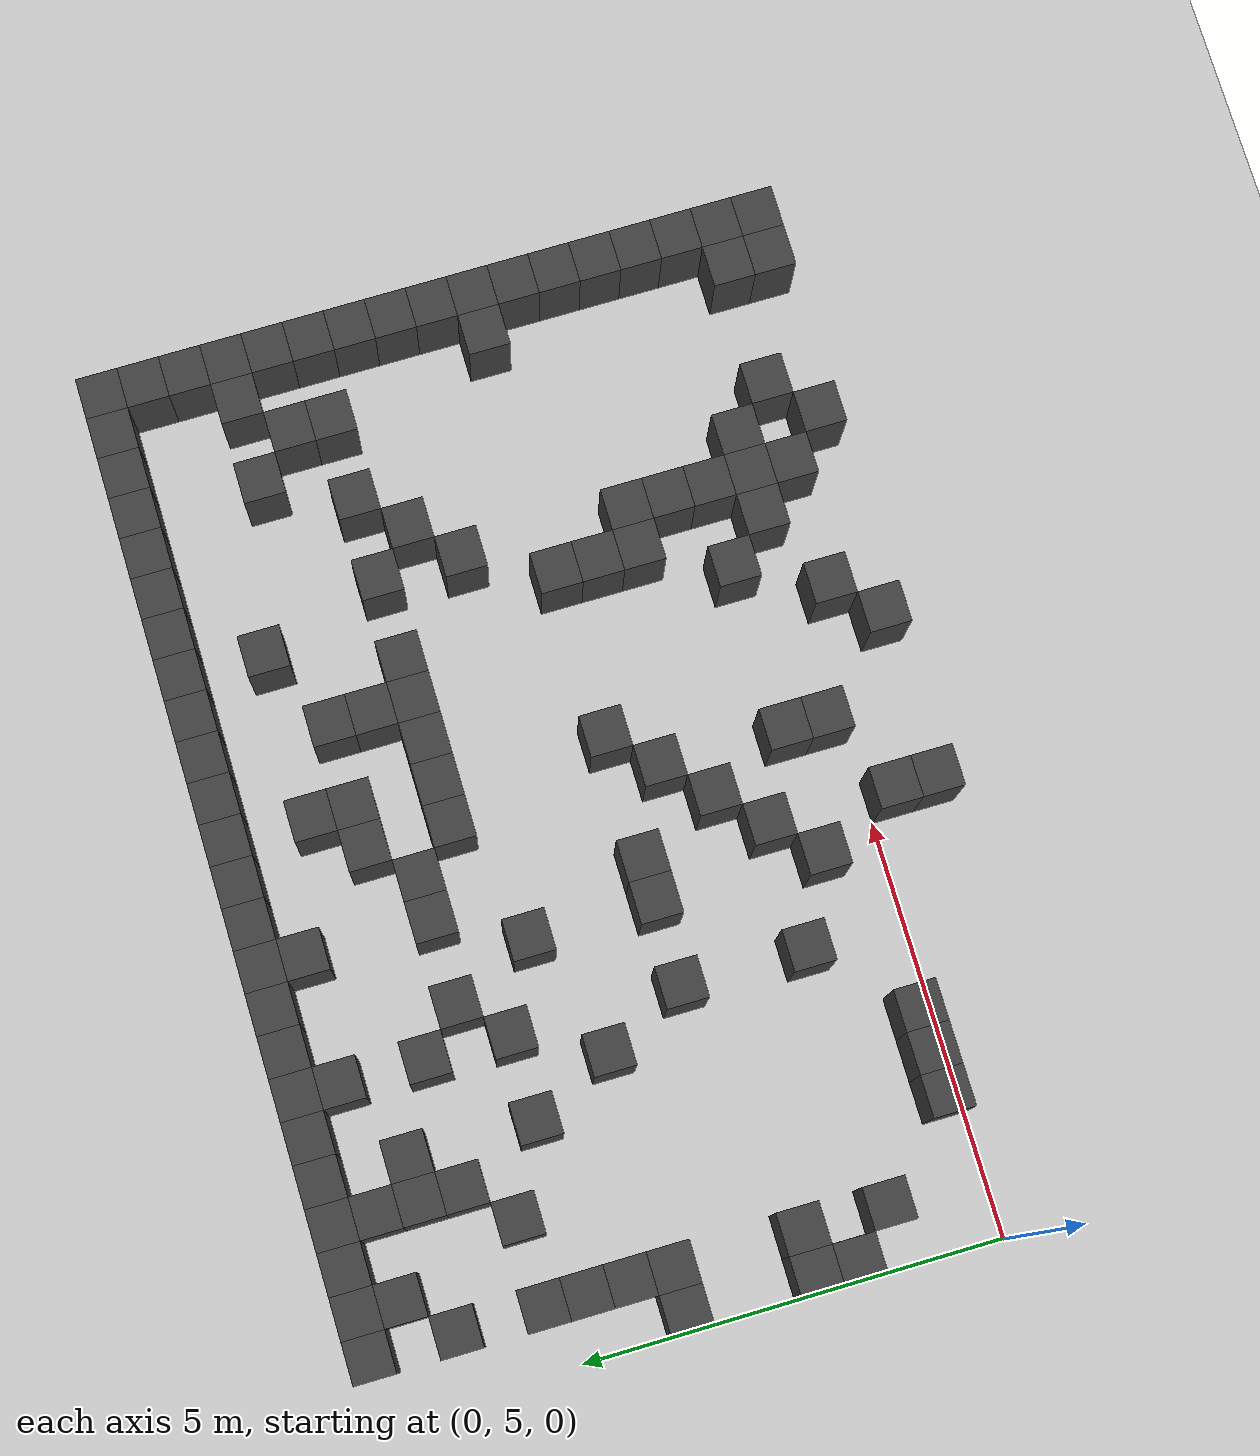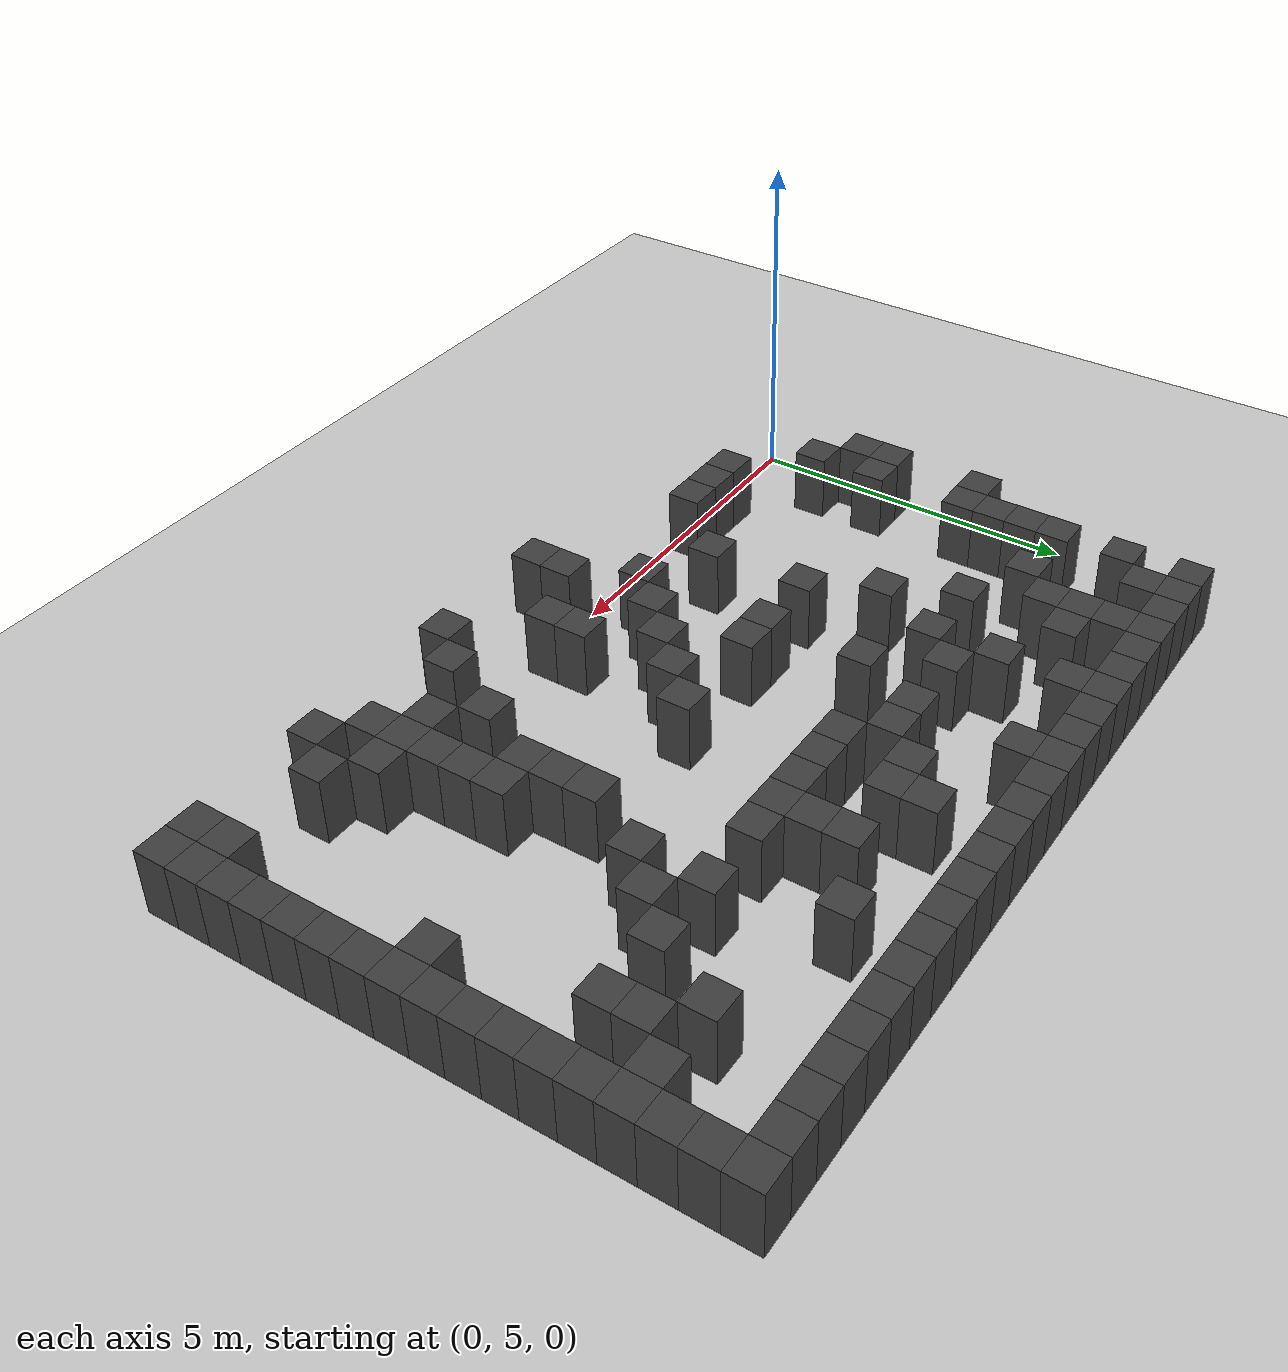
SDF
<sdf version="1.7">
 <world name="map_4682">
  <model name="ground_plane">
   <static>true</static>
   <link name="link">
    <collision name="collision">
     <geometry><plane><normal>0 0 1</normal><size>200 200</size></plane></geometry>
    </collision>
    <visual name="visual">
     <geometry><plane><normal>0 0 1</normal><size>200 200</size></plane></geometry>
     <material><ambient>0.8 0.8 0.8 1</ambient><diffuse>0.8 0.8 0.8 1</diffuse></material>
    </visual>
   </link>
  </model>
  <model name="maze_environment">
   <static>true</static>
   <link name="wall_26">
    <pose>0.750 12.250 0.500 0 0 0</pose>
    <collision name="col"><geometry><box><size>0.5 0.5 1.0</size></box></geometry></collision>
    <visual name="vis">
     <geometry><box><size>0.5 0.5 1.0</size></box></geometry>
     <material><ambient>0.15 0.15 0.15 1</ambient><diffuse>0.25 0.25 0.25 1</diffuse></material>
    </visual>
   </link>
   <link name="wall_27">
    <pose>1.250 12.250 0.500 0 0 0</pose>
    <collision name="col"><geometry><box><size>0.5 0.5 1.0</size></box></geometry></collision>
    <visual name="vis">
     <geometry><box><size>0.5 0.5 1.0</size></box></geometry>
     <material><ambient>0.15 0.15 0.15 1</ambient><diffuse>0.25 0.25 0.25 1</diffuse></material>
    </visual>
   </link>
   <link name="wall_28">
    <pose>1.750 12.250 0.500 0 0 0</pose>
    <collision name="col"><geometry><box><size>0.5 0.5 1.0</size></box></geometry></collision>
    <visual name="vis">
     <geometry><box><size>0.5 0.5 1.0</size></box></geometry>
     <material><ambient>0.15 0.15 0.15 1</ambient><diffuse>0.25 0.25 0.25 1</diffuse></material>
    </visual>
   </link>
   <link name="wall_29">
    <pose>2.250 12.250 0.500 0 0 0</pose>
    <collision name="col"><geometry><box><size>0.5 0.5 1.0</size></box></geometry></collision>
    <visual name="vis">
     <geometry><box><size>0.5 0.5 1.0</size></box></geometry>
     <material><ambient>0.15 0.15 0.15 1</ambient><diffuse>0.25 0.25 0.25 1</diffuse></material>
    </visual>
   </link>
   <link name="wall_30">
    <pose>2.750 12.250 0.500 0 0 0</pose>
    <collision name="col"><geometry><box><size>0.5 0.5 1.0</size></box></geometry></collision>
    <visual name="vis">
     <geometry><box><size>0.5 0.5 1.0</size></box></geometry>
     <material><ambient>0.15 0.15 0.15 1</ambient><diffuse>0.25 0.25 0.25 1</diffuse></material>
    </visual>
   </link>
   <link name="wall_31">
    <pose>3.250 12.250 0.500 0 0 0</pose>
    <collision name="col"><geometry><box><size>0.5 0.5 1.0</size></box></geometry></collision>
    <visual name="vis">
     <geometry><box><size>0.5 0.5 1.0</size></box></geometry>
     <material><ambient>0.15 0.15 0.15 1</ambient><diffuse>0.25 0.25 0.25 1</diffuse></material>
    </visual>
   </link>
   <link name="wall_32">
    <pose>3.750 12.250 0.500 0 0 0</pose>
    <collision name="col"><geometry><box><size>0.5 0.5 1.0</size></box></geometry></collision>
    <visual name="vis">
     <geometry><box><size>0.5 0.5 1.0</size></box></geometry>
     <material><ambient>0.15 0.15 0.15 1</ambient><diffuse>0.25 0.25 0.25 1</diffuse></material>
    </visual>
   </link>
   <link name="wall_33">
    <pose>4.250 12.250 0.500 0 0 0</pose>
    <collision name="col"><geometry><box><size>0.5 0.5 1.0</size></box></geometry></collision>
    <visual name="vis">
     <geometry><box><size>0.5 0.5 1.0</size></box></geometry>
     <material><ambient>0.15 0.15 0.15 1</ambient><diffuse>0.25 0.25 0.25 1</diffuse></material>
    </visual>
   </link>
   <link name="wall_34">
    <pose>4.750 12.250 0.500 0 0 0</pose>
    <collision name="col"><geometry><box><size>0.5 0.5 1.0</size></box></geometry></collision>
    <visual name="vis">
     <geometry><box><size>0.5 0.5 1.0</size></box></geometry>
     <material><ambient>0.15 0.15 0.15 1</ambient><diffuse>0.25 0.25 0.25 1</diffuse></material>
    </visual>
   </link>
   <link name="wall_35">
    <pose>5.250 12.250 0.500 0 0 0</pose>
    <collision name="col"><geometry><box><size>0.5 0.5 1.0</size></box></geometry></collision>
    <visual name="vis">
     <geometry><box><size>0.5 0.5 1.0</size></box></geometry>
     <material><ambient>0.15 0.15 0.15 1</ambient><diffuse>0.25 0.25 0.25 1</diffuse></material>
    </visual>
   </link>
   <link name="wall_36">
    <pose>5.750 12.250 0.500 0 0 0</pose>
    <collision name="col"><geometry><box><size>0.5 0.5 1.0</size></box></geometry></collision>
    <visual name="vis">
     <geometry><box><size>0.5 0.5 1.0</size></box></geometry>
     <material><ambient>0.15 0.15 0.15 1</ambient><diffuse>0.25 0.25 0.25 1</diffuse></material>
    </visual>
   </link>
   <link name="wall_37">
    <pose>6.250 12.250 0.500 0 0 0</pose>
    <collision name="col"><geometry><box><size>0.5 0.5 1.0</size></box></geometry></collision>
    <visual name="vis">
     <geometry><box><size>0.5 0.5 1.0</size></box></geometry>
     <material><ambient>0.15 0.15 0.15 1</ambient><diffuse>0.25 0.25 0.25 1</diffuse></material>
    </visual>
   </link>
   <link name="wall_38">
    <pose>6.750 12.250 0.500 0 0 0</pose>
    <collision name="col"><geometry><box><size>0.5 0.5 1.0</size></box></geometry></collision>
    <visual name="vis">
     <geometry><box><size>0.5 0.5 1.0</size></box></geometry>
     <material><ambient>0.15 0.15 0.15 1</ambient><diffuse>0.25 0.25 0.25 1</diffuse></material>
    </visual>
   </link>
   <link name="wall_39">
    <pose>7.250 12.250 0.500 0 0 0</pose>
    <collision name="col"><geometry><box><size>0.5 0.5 1.0</size></box></geometry></collision>
    <visual name="vis">
     <geometry><box><size>0.5 0.5 1.0</size></box></geometry>
     <material><ambient>0.15 0.15 0.15 1</ambient><diffuse>0.25 0.25 0.25 1</diffuse></material>
    </visual>
   </link>
   <link name="wall_40">
    <pose>7.750 12.250 0.500 0 0 0</pose>
    <collision name="col"><geometry><box><size>0.5 0.5 1.0</size></box></geometry></collision>
    <visual name="vis">
     <geometry><box><size>0.5 0.5 1.0</size></box></geometry>
     <material><ambient>0.15 0.15 0.15 1</ambient><diffuse>0.25 0.25 0.25 1</diffuse></material>
    </visual>
   </link>
   <link name="wall_41">
    <pose>8.250 12.250 0.500 0 0 0</pose>
    <collision name="col"><geometry><box><size>0.5 0.5 1.0</size></box></geometry></collision>
    <visual name="vis">
     <geometry><box><size>0.5 0.5 1.0</size></box></geometry>
     <material><ambient>0.15 0.15 0.15 1</ambient><diffuse>0.25 0.25 0.25 1</diffuse></material>
    </visual>
   </link>
   <link name="wall_42">
    <pose>8.750 12.250 0.500 0 0 0</pose>
    <collision name="col"><geometry><box><size>0.5 0.5 1.0</size></box></geometry></collision>
    <visual name="vis">
     <geometry><box><size>0.5 0.5 1.0</size></box></geometry>
     <material><ambient>0.15 0.15 0.15 1</ambient><diffuse>0.25 0.25 0.25 1</diffuse></material>
    </visual>
   </link>
   <link name="wall_43">
    <pose>9.250 12.250 0.500 0 0 0</pose>
    <collision name="col"><geometry><box><size>0.5 0.5 1.0</size></box></geometry></collision>
    <visual name="vis">
     <geometry><box><size>0.5 0.5 1.0</size></box></geometry>
     <material><ambient>0.15 0.15 0.15 1</ambient><diffuse>0.25 0.25 0.25 1</diffuse></material>
    </visual>
   </link>
   <link name="wall_44">
    <pose>9.750 12.250 0.500 0 0 0</pose>
    <collision name="col"><geometry><box><size>0.5 0.5 1.0</size></box></geometry></collision>
    <visual name="vis">
     <geometry><box><size>0.5 0.5 1.0</size></box></geometry>
     <material><ambient>0.15 0.15 0.15 1</ambient><diffuse>0.25 0.25 0.25 1</diffuse></material>
    </visual>
   </link>
   <link name="wall_45">
    <pose>10.250 12.250 0.500 0 0 0</pose>
    <collision name="col"><geometry><box><size>0.5 0.5 1.0</size></box></geometry></collision>
    <visual name="vis">
     <geometry><box><size>0.5 0.5 1.0</size></box></geometry>
     <material><ambient>0.15 0.15 0.15 1</ambient><diffuse>0.25 0.25 0.25 1</diffuse></material>
    </visual>
   </link>
   <link name="wall_46">
    <pose>10.750 12.250 0.500 0 0 0</pose>
    <collision name="col"><geometry><box><size>0.5 0.5 1.0</size></box></geometry></collision>
    <visual name="vis">
     <geometry><box><size>0.5 0.5 1.0</size></box></geometry>
     <material><ambient>0.15 0.15 0.15 1</ambient><diffuse>0.25 0.25 0.25 1</diffuse></material>
    </visual>
   </link>
   <link name="wall_47">
    <pose>11.250 12.250 0.500 0 0 0</pose>
    <collision name="col"><geometry><box><size>0.5 0.5 1.0</size></box></geometry></collision>
    <visual name="vis">
     <geometry><box><size>0.5 0.5 1.0</size></box></geometry>
     <material><ambient>0.15 0.15 0.15 1</ambient><diffuse>0.25 0.25 0.25 1</diffuse></material>
    </visual>
   </link>
   <link name="wall_48">
    <pose>11.750 12.250 0.500 0 0 0</pose>
    <collision name="col"><geometry><box><size>0.5 0.5 1.0</size></box></geometry></collision>
    <visual name="vis">
     <geometry><box><size>0.5 0.5 1.0</size></box></geometry>
     <material><ambient>0.15 0.15 0.15 1</ambient><diffuse>0.25 0.25 0.25 1</diffuse></material>
    </visual>
   </link>
   <link name="wall_49">
    <pose>12.250 12.250 0.500 0 0 0</pose>
    <collision name="col"><geometry><box><size>0.5 0.5 1.0</size></box></geometry></collision>
    <visual name="vis">
     <geometry><box><size>0.5 0.5 1.0</size></box></geometry>
     <material><ambient>0.15 0.15 0.15 1</ambient><diffuse>0.25 0.25 0.25 1</diffuse></material>
    </visual>
   </link>
   <link name="wall_57">
    <pose>1.250 11.750 0.500 0 0 0</pose>
    <collision name="col"><geometry><box><size>0.5 0.5 1.0</size></box></geometry></collision>
    <visual name="vis">
     <geometry><box><size>0.5 0.5 1.0</size></box></geometry>
     <material><ambient>0.15 0.15 0.15 1</ambient><diffuse>0.25 0.25 0.25 1</diffuse></material>
    </visual>
   </link>
   <link name="wall_58">
    <pose>2.250 11.750 0.500 0 0 0</pose>
    <collision name="col"><geometry><box><size>0.5 0.5 1.0</size></box></geometry></collision>
    <visual name="vis">
     <geometry><box><size>0.5 0.5 1.0</size></box></geometry>
     <material><ambient>0.15 0.15 0.15 1</ambient><diffuse>0.25 0.25 0.25 1</diffuse></material>
    </visual>
   </link>
   <link name="wall_59">
    <pose>3.750 11.750 0.500 0 0 0</pose>
    <collision name="col"><geometry><box><size>0.5 0.5 1.0</size></box></geometry></collision>
    <visual name="vis">
     <geometry><box><size>0.5 0.5 1.0</size></box></geometry>
     <material><ambient>0.15 0.15 0.15 1</ambient><diffuse>0.25 0.25 0.25 1</diffuse></material>
    </visual>
   </link>
   <link name="wall_60">
    <pose>5.250 11.750 0.500 0 0 0</pose>
    <collision name="col"><geometry><box><size>0.5 0.5 1.0</size></box></geometry></collision>
    <visual name="vis">
     <geometry><box><size>0.5 0.5 1.0</size></box></geometry>
     <material><ambient>0.15 0.15 0.15 1</ambient><diffuse>0.25 0.25 0.25 1</diffuse></material>
    </visual>
   </link>
   <link name="wall_61">
    <pose>12.250 11.750 0.500 0 0 0</pose>
    <collision name="col"><geometry><box><size>0.5 0.5 1.0</size></box></geometry></collision>
    <visual name="vis">
     <geometry><box><size>0.5 0.5 1.0</size></box></geometry>
     <material><ambient>0.15 0.15 0.15 1</ambient><diffuse>0.25 0.25 0.25 1</diffuse></material>
    </visual>
   </link>
   <link name="wall_69">
    <pose>0.750 11.250 0.500 0 0 0</pose>
    <collision name="col"><geometry><box><size>0.5 0.5 1.0</size></box></geometry></collision>
    <visual name="vis">
     <geometry><box><size>0.5 0.5 1.0</size></box></geometry>
     <material><ambient>0.15 0.15 0.15 1</ambient><diffuse>0.25 0.25 0.25 1</diffuse></material>
    </visual>
   </link>
   <link name="wall_70">
    <pose>2.250 11.250 0.500 0 0 0</pose>
    <collision name="col"><geometry><box><size>0.5 0.5 1.0</size></box></geometry></collision>
    <visual name="vis">
     <geometry><box><size>0.5 0.5 1.0</size></box></geometry>
     <material><ambient>0.15 0.15 0.15 1</ambient><diffuse>0.25 0.25 0.25 1</diffuse></material>
    </visual>
   </link>
   <link name="wall_71">
    <pose>2.750 11.250 0.500 0 0 0</pose>
    <collision name="col"><geometry><box><size>0.5 0.5 1.0</size></box></geometry></collision>
    <visual name="vis">
     <geometry><box><size>0.5 0.5 1.0</size></box></geometry>
     <material><ambient>0.15 0.15 0.15 1</ambient><diffuse>0.25 0.25 0.25 1</diffuse></material>
    </visual>
   </link>
   <link name="wall_72">
    <pose>6.750 11.250 0.500 0 0 0</pose>
    <collision name="col"><geometry><box><size>0.5 0.5 1.0</size></box></geometry></collision>
    <visual name="vis">
     <geometry><box><size>0.5 0.5 1.0</size></box></geometry>
     <material><ambient>0.15 0.15 0.15 1</ambient><diffuse>0.25 0.25 0.25 1</diffuse></material>
    </visual>
   </link>
   <link name="wall_73">
    <pose>8.750 11.250 0.500 0 0 0</pose>
    <collision name="col"><geometry><box><size>0.5 0.5 1.0</size></box></geometry></collision>
    <visual name="vis">
     <geometry><box><size>0.5 0.5 1.0</size></box></geometry>
     <material><ambient>0.15 0.15 0.15 1</ambient><diffuse>0.25 0.25 0.25 1</diffuse></material>
    </visual>
   </link>
   <link name="wall_74">
    <pose>12.250 11.250 0.500 0 0 0</pose>
    <collision name="col"><geometry><box><size>0.5 0.5 1.0</size></box></geometry></collision>
    <visual name="vis">
     <geometry><box><size>0.5 0.5 1.0</size></box></geometry>
     <material><ambient>0.15 0.15 0.15 1</ambient><diffuse>0.25 0.25 0.25 1</diffuse></material>
    </visual>
   </link>
   <link name="wall_81">
    <pose>2.250 10.750 0.500 0 0 0</pose>
    <collision name="col"><geometry><box><size>0.5 0.5 1.0</size></box></geometry></collision>
    <visual name="vis">
     <geometry><box><size>0.5 0.5 1.0</size></box></geometry>
     <material><ambient>0.15 0.15 0.15 1</ambient><diffuse>0.25 0.25 0.25 1</diffuse></material>
    </visual>
   </link>
   <link name="wall_82">
    <pose>3.750 10.750 0.500 0 0 0</pose>
    <collision name="col"><geometry><box><size>0.5 0.5 1.0</size></box></geometry></collision>
    <visual name="vis">
     <geometry><box><size>0.5 0.5 1.0</size></box></geometry>
     <material><ambient>0.15 0.15 0.15 1</ambient><diffuse>0.25 0.25 0.25 1</diffuse></material>
    </visual>
   </link>
   <link name="wall_83">
    <pose>6.250 10.750 0.500 0 0 0</pose>
    <collision name="col"><geometry><box><size>0.5 0.5 1.0</size></box></geometry></collision>
    <visual name="vis">
     <geometry><box><size>0.5 0.5 1.0</size></box></geometry>
     <material><ambient>0.15 0.15 0.15 1</ambient><diffuse>0.25 0.25 0.25 1</diffuse></material>
    </visual>
   </link>
   <link name="wall_84">
    <pose>6.750 10.750 0.500 0 0 0</pose>
    <collision name="col"><geometry><box><size>0.5 0.5 1.0</size></box></geometry></collision>
    <visual name="vis">
     <geometry><box><size>0.5 0.5 1.0</size></box></geometry>
     <material><ambient>0.15 0.15 0.15 1</ambient><diffuse>0.25 0.25 0.25 1</diffuse></material>
    </visual>
   </link>
   <link name="wall_85">
    <pose>7.750 10.750 0.500 0 0 0</pose>
    <collision name="col"><geometry><box><size>0.5 0.5 1.0</size></box></geometry></collision>
    <visual name="vis">
     <geometry><box><size>0.5 0.5 1.0</size></box></geometry>
     <material><ambient>0.15 0.15 0.15 1</ambient><diffuse>0.25 0.25 0.25 1</diffuse></material>
    </visual>
   </link>
   <link name="wall_86">
    <pose>10.750 10.750 0.500 0 0 0</pose>
    <collision name="col"><geometry><box><size>0.5 0.5 1.0</size></box></geometry></collision>
    <visual name="vis">
     <geometry><box><size>0.5 0.5 1.0</size></box></geometry>
     <material><ambient>0.15 0.15 0.15 1</ambient><diffuse>0.25 0.25 0.25 1</diffuse></material>
    </visual>
   </link>
   <link name="wall_87">
    <pose>11.750 10.750 0.500 0 0 0</pose>
    <collision name="col"><geometry><box><size>0.5 0.5 1.0</size></box></geometry></collision>
    <visual name="vis">
     <geometry><box><size>0.5 0.5 1.0</size></box></geometry>
     <material><ambient>0.15 0.15 0.15 1</ambient><diffuse>0.25 0.25 0.25 1</diffuse></material>
    </visual>
   </link>
   <link name="wall_88">
    <pose>12.250 10.750 0.500 0 0 0</pose>
    <collision name="col"><geometry><box><size>0.5 0.5 1.0</size></box></geometry></collision>
    <visual name="vis">
     <geometry><box><size>0.5 0.5 1.0</size></box></geometry>
     <material><ambient>0.15 0.15 0.15 1</ambient><diffuse>0.25 0.25 0.25 1</diffuse></material>
    </visual>
   </link>
   <link name="wall_94">
    <pose>0.750 10.250 0.500 0 0 0</pose>
    <collision name="col"><geometry><box><size>0.5 0.5 1.0</size></box></geometry></collision>
    <visual name="vis">
     <geometry><box><size>0.5 0.5 1.0</size></box></geometry>
     <material><ambient>0.15 0.15 0.15 1</ambient><diffuse>0.25 0.25 0.25 1</diffuse></material>
    </visual>
   </link>
   <link name="wall_95">
    <pose>1.750 10.250 0.500 0 0 0</pose>
    <collision name="col"><geometry><box><size>0.5 0.5 1.0</size></box></geometry></collision>
    <visual name="vis">
     <geometry><box><size>0.5 0.5 1.0</size></box></geometry>
     <material><ambient>0.15 0.15 0.15 1</ambient><diffuse>0.25 0.25 0.25 1</diffuse></material>
    </visual>
   </link>
   <link name="wall_96">
    <pose>4.250 10.250 0.500 0 0 0</pose>
    <collision name="col"><geometry><box><size>0.5 0.5 1.0</size></box></geometry></collision>
    <visual name="vis">
     <geometry><box><size>0.5 0.5 1.0</size></box></geometry>
     <material><ambient>0.15 0.15 0.15 1</ambient><diffuse>0.25 0.25 0.25 1</diffuse></material>
    </visual>
   </link>
   <link name="wall_97">
    <pose>5.250 10.250 0.500 0 0 0</pose>
    <collision name="col"><geometry><box><size>0.5 0.5 1.0</size></box></geometry></collision>
    <visual name="vis">
     <geometry><box><size>0.5 0.5 1.0</size></box></geometry>
     <material><ambient>0.15 0.15 0.15 1</ambient><diffuse>0.25 0.25 0.25 1</diffuse></material>
    </visual>
   </link>
   <link name="wall_98">
    <pose>5.750 10.250 0.500 0 0 0</pose>
    <collision name="col"><geometry><box><size>0.5 0.5 1.0</size></box></geometry></collision>
    <visual name="vis">
     <geometry><box><size>0.5 0.5 1.0</size></box></geometry>
     <material><ambient>0.15 0.15 0.15 1</ambient><diffuse>0.25 0.25 0.25 1</diffuse></material>
    </visual>
   </link>
   <link name="wall_99">
    <pose>7.750 10.250 0.500 0 0 0</pose>
    <collision name="col"><geometry><box><size>0.5 0.5 1.0</size></box></geometry></collision>
    <visual name="vis">
     <geometry><box><size>0.5 0.5 1.0</size></box></geometry>
     <material><ambient>0.15 0.15 0.15 1</ambient><diffuse>0.25 0.25 0.25 1</diffuse></material>
    </visual>
   </link>
   <link name="wall_100">
    <pose>11.250 10.250 0.500 0 0 0</pose>
    <collision name="col"><geometry><box><size>0.5 0.5 1.0</size></box></geometry></collision>
    <visual name="vis">
     <geometry><box><size>0.5 0.5 1.0</size></box></geometry>
     <material><ambient>0.15 0.15 0.15 1</ambient><diffuse>0.25 0.25 0.25 1</diffuse></material>
    </visual>
   </link>
   <link name="wall_101">
    <pose>12.250 10.250 0.500 0 0 0</pose>
    <collision name="col"><geometry><box><size>0.5 0.5 1.0</size></box></geometry></collision>
    <visual name="vis">
     <geometry><box><size>0.5 0.5 1.0</size></box></geometry>
     <material><ambient>0.15 0.15 0.15 1</ambient><diffuse>0.25 0.25 0.25 1</diffuse></material>
    </visual>
   </link>
   <link name="wall_112">
    <pose>0.750 9.750 0.500 0 0 0</pose>
    <collision name="col"><geometry><box><size>0.5 0.5 1.0</size></box></geometry></collision>
    <visual name="vis">
     <geometry><box><size>0.5 0.5 1.0</size></box></geometry>
     <material><ambient>0.15 0.15 0.15 1</ambient><diffuse>0.25 0.25 0.25 1</diffuse></material>
    </visual>
   </link>
   <link name="wall_113">
    <pose>2.750 9.750 0.500 0 0 0</pose>
    <collision name="col"><geometry><box><size>0.5 0.5 1.0</size></box></geometry></collision>
    <visual name="vis">
     <geometry><box><size>0.5 0.5 1.0</size></box></geometry>
     <material><ambient>0.15 0.15 0.15 1</ambient><diffuse>0.25 0.25 0.25 1</diffuse></material>
    </visual>
   </link>
   <link name="wall_114">
    <pose>3.750 9.750 0.500 0 0 0</pose>
    <collision name="col"><geometry><box><size>0.5 0.5 1.0</size></box></geometry></collision>
    <visual name="vis">
     <geometry><box><size>0.5 0.5 1.0</size></box></geometry>
     <material><ambient>0.15 0.15 0.15 1</ambient><diffuse>0.25 0.25 0.25 1</diffuse></material>
    </visual>
   </link>
   <link name="wall_115">
    <pose>6.250 9.750 0.500 0 0 0</pose>
    <collision name="col"><geometry><box><size>0.5 0.5 1.0</size></box></geometry></collision>
    <visual name="vis">
     <geometry><box><size>0.5 0.5 1.0</size></box></geometry>
     <material><ambient>0.15 0.15 0.15 1</ambient><diffuse>0.25 0.25 0.25 1</diffuse></material>
    </visual>
   </link>
   <link name="wall_116">
    <pose>6.750 9.750 0.500 0 0 0</pose>
    <collision name="col"><geometry><box><size>0.5 0.5 1.0</size></box></geometry></collision>
    <visual name="vis">
     <geometry><box><size>0.5 0.5 1.0</size></box></geometry>
     <material><ambient>0.15 0.15 0.15 1</ambient><diffuse>0.25 0.25 0.25 1</diffuse></material>
    </visual>
   </link>
   <link name="wall_117">
    <pose>7.250 9.750 0.500 0 0 0</pose>
    <collision name="col"><geometry><box><size>0.5 0.5 1.0</size></box></geometry></collision>
    <visual name="vis">
     <geometry><box><size>0.5 0.5 1.0</size></box></geometry>
     <material><ambient>0.15 0.15 0.15 1</ambient><diffuse>0.25 0.25 0.25 1</diffuse></material>
    </visual>
   </link>
   <link name="wall_118">
    <pose>7.750 9.750 0.500 0 0 0</pose>
    <collision name="col"><geometry><box><size>0.5 0.5 1.0</size></box></geometry></collision>
    <visual name="vis">
     <geometry><box><size>0.5 0.5 1.0</size></box></geometry>
     <material><ambient>0.15 0.15 0.15 1</ambient><diffuse>0.25 0.25 0.25 1</diffuse></material>
    </visual>
   </link>
   <link name="wall_119">
    <pose>8.250 9.750 0.500 0 0 0</pose>
    <collision name="col"><geometry><box><size>0.5 0.5 1.0</size></box></geometry></collision>
    <visual name="vis">
     <geometry><box><size>0.5 0.5 1.0</size></box></geometry>
     <material><ambient>0.15 0.15 0.15 1</ambient><diffuse>0.25 0.25 0.25 1</diffuse></material>
    </visual>
   </link>
   <link name="wall_120">
    <pose>9.250 9.750 0.500 0 0 0</pose>
    <collision name="col"><geometry><box><size>0.5 0.5 1.0</size></box></geometry></collision>
    <visual name="vis">
     <geometry><box><size>0.5 0.5 1.0</size></box></geometry>
     <material><ambient>0.15 0.15 0.15 1</ambient><diffuse>0.25 0.25 0.25 1</diffuse></material>
    </visual>
   </link>
   <link name="wall_121">
    <pose>10.250 9.750 0.500 0 0 0</pose>
    <collision name="col"><geometry><box><size>0.5 0.5 1.0</size></box></geometry></collision>
    <visual name="vis">
     <geometry><box><size>0.5 0.5 1.0</size></box></geometry>
     <material><ambient>0.15 0.15 0.15 1</ambient><diffuse>0.25 0.25 0.25 1</diffuse></material>
    </visual>
   </link>
   <link name="wall_122">
    <pose>11.250 9.750 0.500 0 0 0</pose>
    <collision name="col"><geometry><box><size>0.5 0.5 1.0</size></box></geometry></collision>
    <visual name="vis">
     <geometry><box><size>0.5 0.5 1.0</size></box></geometry>
     <material><ambient>0.15 0.15 0.15 1</ambient><diffuse>0.25 0.25 0.25 1</diffuse></material>
    </visual>
   </link>
   <link name="wall_123">
    <pose>12.250 9.750 0.500 0 0 0</pose>
    <collision name="col"><geometry><box><size>0.5 0.5 1.0</size></box></geometry></collision>
    <visual name="vis">
     <geometry><box><size>0.5 0.5 1.0</size></box></geometry>
     <material><ambient>0.15 0.15 0.15 1</ambient><diffuse>0.25 0.25 0.25 1</diffuse></material>
    </visual>
   </link>
   <link name="wall_126">
    <pose>0.750 9.250 0.500 0 0 0</pose>
    <collision name="col"><geometry><box><size>0.5 0.5 1.0</size></box></geometry></collision>
    <visual name="vis">
     <geometry><box><size>0.5 0.5 1.0</size></box></geometry>
     <material><ambient>0.15 0.15 0.15 1</ambient><diffuse>0.25 0.25 0.25 1</diffuse></material>
    </visual>
   </link>
   <link name="wall_127">
    <pose>4.750 9.250 0.500 0 0 0</pose>
    <collision name="col"><geometry><box><size>0.5 0.5 1.0</size></box></geometry></collision>
    <visual name="vis">
     <geometry><box><size>0.5 0.5 1.0</size></box></geometry>
     <material><ambient>0.15 0.15 0.15 1</ambient><diffuse>0.25 0.25 0.25 1</diffuse></material>
    </visual>
   </link>
   <link name="wall_128">
    <pose>9.750 9.250 0.500 0 0 0</pose>
    <collision name="col"><geometry><box><size>0.5 0.5 1.0</size></box></geometry></collision>
    <visual name="vis">
     <geometry><box><size>0.5 0.5 1.0</size></box></geometry>
     <material><ambient>0.15 0.15 0.15 1</ambient><diffuse>0.25 0.25 0.25 1</diffuse></material>
    </visual>
   </link>
   <link name="wall_129">
    <pose>12.250 9.250 0.500 0 0 0</pose>
    <collision name="col"><geometry><box><size>0.5 0.5 1.0</size></box></geometry></collision>
    <visual name="vis">
     <geometry><box><size>0.5 0.5 1.0</size></box></geometry>
     <material><ambient>0.15 0.15 0.15 1</ambient><diffuse>0.25 0.25 0.25 1</diffuse></material>
    </visual>
   </link>
   <link name="wall_137">
    <pose>0.250 8.750 0.500 0 0 0</pose>
    <collision name="col"><geometry><box><size>0.5 0.5 1.0</size></box></geometry></collision>
    <visual name="vis">
     <geometry><box><size>0.5 0.5 1.0</size></box></geometry>
     <material><ambient>0.15 0.15 0.15 1</ambient><diffuse>0.25 0.25 0.25 1</diffuse></material>
    </visual>
   </link>
   <link name="wall_138">
    <pose>0.750 8.750 0.500 0 0 0</pose>
    <collision name="col"><geometry><box><size>0.5 0.5 1.0</size></box></geometry></collision>
    <visual name="vis">
     <geometry><box><size>0.5 0.5 1.0</size></box></geometry>
     <material><ambient>0.15 0.15 0.15 1</ambient><diffuse>0.25 0.25 0.25 1</diffuse></material>
    </visual>
   </link>
   <link name="wall_139">
    <pose>3.250 8.750 0.500 0 0 0</pose>
    <collision name="col"><geometry><box><size>0.5 0.5 1.0</size></box></geometry></collision>
    <visual name="vis">
     <geometry><box><size>0.5 0.5 1.0</size></box></geometry>
     <material><ambient>0.15 0.15 0.15 1</ambient><diffuse>0.25 0.25 0.25 1</diffuse></material>
    </visual>
   </link>
   <link name="wall_140">
    <pose>9.250 8.750 0.500 0 0 0</pose>
    <collision name="col"><geometry><box><size>0.5 0.5 1.0</size></box></geometry></collision>
    <visual name="vis">
     <geometry><box><size>0.5 0.5 1.0</size></box></geometry>
     <material><ambient>0.15 0.15 0.15 1</ambient><diffuse>0.25 0.25 0.25 1</diffuse></material>
    </visual>
   </link>
   <link name="wall_141">
    <pose>12.250 8.750 0.500 0 0 0</pose>
    <collision name="col"><geometry><box><size>0.5 0.5 1.0</size></box></geometry></collision>
    <visual name="vis">
     <geometry><box><size>0.5 0.5 1.0</size></box></geometry>
     <material><ambient>0.15 0.15 0.15 1</ambient><diffuse>0.25 0.25 0.25 1</diffuse></material>
    </visual>
   </link>
   <link name="wall_145">
    <pose>12.250 8.250 0.500 0 0 0</pose>
    <collision name="col"><geometry><box><size>0.5 0.5 1.0</size></box></geometry></collision>
    <visual name="vis">
     <geometry><box><size>0.5 0.5 1.0</size></box></geometry>
     <material><ambient>0.15 0.15 0.15 1</ambient><diffuse>0.25 0.25 0.25 1</diffuse></material>
    </visual>
   </link>
   <link name="wall_153">
    <pose>3.750 7.750 0.500 0 0 0</pose>
    <collision name="col"><geometry><box><size>0.5 0.5 1.0</size></box></geometry></collision>
    <visual name="vis">
     <geometry><box><size>0.5 0.5 1.0</size></box></geometry>
     <material><ambient>0.15 0.15 0.15 1</ambient><diffuse>0.25 0.25 0.25 1</diffuse></material>
    </visual>
   </link>
   <link name="wall_154">
    <pose>4.750 7.750 0.500 0 0 0</pose>
    <collision name="col"><geometry><box><size>0.5 0.5 1.0</size></box></geometry></collision>
    <visual name="vis">
     <geometry><box><size>0.5 0.5 1.0</size></box></geometry>
     <material><ambient>0.15 0.15 0.15 1</ambient><diffuse>0.25 0.25 0.25 1</diffuse></material>
    </visual>
   </link>
   <link name="wall_155">
    <pose>5.250 7.750 0.500 0 0 0</pose>
    <collision name="col"><geometry><box><size>0.5 0.5 1.0</size></box></geometry></collision>
    <visual name="vis">
     <geometry><box><size>0.5 0.5 1.0</size></box></geometry>
     <material><ambient>0.15 0.15 0.15 1</ambient><diffuse>0.25 0.25 0.25 1</diffuse></material>
    </visual>
   </link>
   <link name="wall_156">
    <pose>6.750 7.750 0.500 0 0 0</pose>
    <collision name="col"><geometry><box><size>0.5 0.5 1.0</size></box></geometry></collision>
    <visual name="vis">
     <geometry><box><size>0.5 0.5 1.0</size></box></geometry>
     <material><ambient>0.15 0.15 0.15 1</ambient><diffuse>0.25 0.25 0.25 1</diffuse></material>
    </visual>
   </link>
   <link name="wall_157">
    <pose>8.750 7.750 0.500 0 0 0</pose>
    <collision name="col"><geometry><box><size>0.5 0.5 1.0</size></box></geometry></collision>
    <visual name="vis">
     <geometry><box><size>0.5 0.5 1.0</size></box></geometry>
     <material><ambient>0.15 0.15 0.15 1</ambient><diffuse>0.25 0.25 0.25 1</diffuse></material>
    </visual>
   </link>
   <link name="wall_158">
    <pose>11.750 7.750 0.500 0 0 0</pose>
    <collision name="col"><geometry><box><size>0.5 0.5 1.0</size></box></geometry></collision>
    <visual name="vis">
     <geometry><box><size>0.5 0.5 1.0</size></box></geometry>
     <material><ambient>0.15 0.15 0.15 1</ambient><diffuse>0.25 0.25 0.25 1</diffuse></material>
    </visual>
   </link>
   <link name="wall_159">
    <pose>12.250 7.750 0.500 0 0 0</pose>
    <collision name="col"><geometry><box><size>0.5 0.5 1.0</size></box></geometry></collision>
    <visual name="vis">
     <geometry><box><size>0.5 0.5 1.0</size></box></geometry>
     <material><ambient>0.15 0.15 0.15 1</ambient><diffuse>0.25 0.25 0.25 1</diffuse></material>
    </visual>
   </link>
   <link name="wall_167">
    <pose>0.250 7.250 0.500 0 0 0</pose>
    <collision name="col"><geometry><box><size>0.5 0.5 1.0</size></box></geometry></collision>
    <visual name="vis">
     <geometry><box><size>0.5 0.5 1.0</size></box></geometry>
     <material><ambient>0.15 0.15 0.15 1</ambient><diffuse>0.25 0.25 0.25 1</diffuse></material>
    </visual>
   </link>
   <link name="wall_168">
    <pose>0.750 7.250 0.500 0 0 0</pose>
    <collision name="col"><geometry><box><size>0.5 0.5 1.0</size></box></geometry></collision>
    <visual name="vis">
     <geometry><box><size>0.5 0.5 1.0</size></box></geometry>
     <material><ambient>0.15 0.15 0.15 1</ambient><diffuse>0.25 0.25 0.25 1</diffuse></material>
    </visual>
   </link>
   <link name="wall_169">
    <pose>6.250 7.250 0.500 0 0 0</pose>
    <collision name="col"><geometry><box><size>0.5 0.5 1.0</size></box></geometry></collision>
    <visual name="vis">
     <geometry><box><size>0.5 0.5 1.0</size></box></geometry>
     <material><ambient>0.15 0.15 0.15 1</ambient><diffuse>0.25 0.25 0.25 1</diffuse></material>
    </visual>
   </link>
   <link name="wall_170">
    <pose>8.750 7.250 0.500 0 0 0</pose>
    <collision name="col"><geometry><box><size>0.5 0.5 1.0</size></box></geometry></collision>
    <visual name="vis">
     <geometry><box><size>0.5 0.5 1.0</size></box></geometry>
     <material><ambient>0.15 0.15 0.15 1</ambient><diffuse>0.25 0.25 0.25 1</diffuse></material>
    </visual>
   </link>
   <link name="wall_171">
    <pose>12.250 7.250 0.500 0 0 0</pose>
    <collision name="col"><geometry><box><size>0.5 0.5 1.0</size></box></geometry></collision>
    <visual name="vis">
     <geometry><box><size>0.5 0.5 1.0</size></box></geometry>
     <material><ambient>0.15 0.15 0.15 1</ambient><diffuse>0.25 0.25 0.25 1</diffuse></material>
    </visual>
   </link>
   <link name="wall_179">
    <pose>0.250 6.750 0.500 0 0 0</pose>
    <collision name="col"><geometry><box><size>0.5 0.5 1.0</size></box></geometry></collision>
    <visual name="vis">
     <geometry><box><size>0.5 0.5 1.0</size></box></geometry>
     <material><ambient>0.15 0.15 0.15 1</ambient><diffuse>0.25 0.25 0.25 1</diffuse></material>
    </visual>
   </link>
   <link name="wall_180">
    <pose>5.750 6.750 0.500 0 0 0</pose>
    <collision name="col"><geometry><box><size>0.5 0.5 1.0</size></box></geometry></collision>
    <visual name="vis">
     <geometry><box><size>0.5 0.5 1.0</size></box></geometry>
     <material><ambient>0.15 0.15 0.15 1</ambient><diffuse>0.25 0.25 0.25 1</diffuse></material>
    </visual>
   </link>
   <link name="wall_181">
    <pose>8.750 6.750 0.500 0 0 0</pose>
    <collision name="col"><geometry><box><size>0.5 0.5 1.0</size></box></geometry></collision>
    <visual name="vis">
     <geometry><box><size>0.5 0.5 1.0</size></box></geometry>
     <material><ambient>0.15 0.15 0.15 1</ambient><diffuse>0.25 0.25 0.25 1</diffuse></material>
    </visual>
   </link>
   <link name="wall_182">
    <pose>9.250 6.750 0.500 0 0 0</pose>
    <collision name="col"><geometry><box><size>0.5 0.5 1.0</size></box></geometry></collision>
    <visual name="vis">
     <geometry><box><size>0.5 0.5 1.0</size></box></geometry>
     <material><ambient>0.15 0.15 0.15 1</ambient><diffuse>0.25 0.25 0.25 1</diffuse></material>
    </visual>
   </link>
   <link name="wall_183">
    <pose>12.250 6.750 0.500 0 0 0</pose>
    <collision name="col"><geometry><box><size>0.5 0.5 1.0</size></box></geometry></collision>
    <visual name="vis">
     <geometry><box><size>0.5 0.5 1.0</size></box></geometry>
     <material><ambient>0.15 0.15 0.15 1</ambient><diffuse>0.25 0.25 0.25 1</diffuse></material>
    </visual>
   </link>
   <link name="wall_197">
    <pose>0.750 6.250 0.500 0 0 0</pose>
    <collision name="col"><geometry><box><size>0.5 0.5 1.0</size></box></geometry></collision>
    <visual name="vis">
     <geometry><box><size>0.5 0.5 1.0</size></box></geometry>
     <material><ambient>0.15 0.15 0.15 1</ambient><diffuse>0.25 0.25 0.25 1</diffuse></material>
    </visual>
   </link>
   <link name="wall_198">
    <pose>3.750 6.250 0.500 0 0 0</pose>
    <collision name="col"><geometry><box><size>0.5 0.5 1.0</size></box></geometry></collision>
    <visual name="vis">
     <geometry><box><size>0.5 0.5 1.0</size></box></geometry>
     <material><ambient>0.15 0.15 0.15 1</ambient><diffuse>0.25 0.25 0.25 1</diffuse></material>
    </visual>
   </link>
   <link name="wall_199">
    <pose>5.250 6.250 0.500 0 0 0</pose>
    <collision name="col"><geometry><box><size>0.5 0.5 1.0</size></box></geometry></collision>
    <visual name="vis">
     <geometry><box><size>0.5 0.5 1.0</size></box></geometry>
     <material><ambient>0.15 0.15 0.15 1</ambient><diffuse>0.25 0.25 0.25 1</diffuse></material>
    </visual>
   </link>
   <link name="wall_200">
    <pose>9.250 6.250 0.500 0 0 0</pose>
    <collision name="col"><geometry><box><size>0.5 0.5 1.0</size></box></geometry></collision>
    <visual name="vis">
     <geometry><box><size>0.5 0.5 1.0</size></box></geometry>
     <material><ambient>0.15 0.15 0.15 1</ambient><diffuse>0.25 0.25 0.25 1</diffuse></material>
    </visual>
   </link>
   <link name="wall_201">
    <pose>12.250 6.250 0.500 0 0 0</pose>
    <collision name="col"><geometry><box><size>0.5 0.5 1.0</size></box></geometry></collision>
    <visual name="vis">
     <geometry><box><size>0.5 0.5 1.0</size></box></geometry>
     <material><ambient>0.15 0.15 0.15 1</ambient><diffuse>0.25 0.25 0.25 1</diffuse></material>
    </visual>
   </link>
   <link name="wall_210">
    <pose>4.750 5.750 0.500 0 0 0</pose>
    <collision name="col"><geometry><box><size>0.5 0.5 1.0</size></box></geometry></collision>
    <visual name="vis">
     <geometry><box><size>0.5 0.5 1.0</size></box></geometry>
     <material><ambient>0.15 0.15 0.15 1</ambient><diffuse>0.25 0.25 0.25 1</diffuse></material>
    </visual>
   </link>
   <link name="wall_211">
    <pose>6.250 5.750 0.500 0 0 0</pose>
    <collision name="col"><geometry><box><size>0.5 0.5 1.0</size></box></geometry></collision>
    <visual name="vis">
     <geometry><box><size>0.5 0.5 1.0</size></box></geometry>
     <material><ambient>0.15 0.15 0.15 1</ambient><diffuse>0.25 0.25 0.25 1</diffuse></material>
    </visual>
   </link>
   <link name="wall_212">
    <pose>8.250 5.750 0.500 0 0 0</pose>
    <collision name="col"><geometry><box><size>0.5 0.5 1.0</size></box></geometry></collision>
    <visual name="vis">
     <geometry><box><size>0.5 0.5 1.0</size></box></geometry>
     <material><ambient>0.15 0.15 0.15 1</ambient><diffuse>0.25 0.25 0.25 1</diffuse></material>
    </visual>
   </link>
   <link name="wall_213">
    <pose>9.250 5.750 0.500 0 0 0</pose>
    <collision name="col"><geometry><box><size>0.5 0.5 1.0</size></box></geometry></collision>
    <visual name="vis">
     <geometry><box><size>0.5 0.5 1.0</size></box></geometry>
     <material><ambient>0.15 0.15 0.15 1</ambient><diffuse>0.25 0.25 0.25 1</diffuse></material>
    </visual>
   </link>
   <link name="wall_214">
    <pose>12.250 5.750 0.500 0 0 0</pose>
    <collision name="col"><geometry><box><size>0.5 0.5 1.0</size></box></geometry></collision>
    <visual name="vis">
     <geometry><box><size>0.5 0.5 1.0</size></box></geometry>
     <material><ambient>0.15 0.15 0.15 1</ambient><diffuse>0.25 0.25 0.25 1</diffuse></material>
    </visual>
   </link>
   <link name="wall_219">
    <pose>1.750 5.250 0.500 0 0 0</pose>
    <collision name="col"><geometry><box><size>0.5 0.5 1.0</size></box></geometry></collision>
    <visual name="vis">
     <geometry><box><size>0.5 0.5 1.0</size></box></geometry>
     <material><ambient>0.15 0.15 0.15 1</ambient><diffuse>0.25 0.25 0.25 1</diffuse></material>
    </visual>
   </link>
   <link name="wall_220">
    <pose>2.250 5.250 0.500 0 0 0</pose>
    <collision name="col"><geometry><box><size>0.5 0.5 1.0</size></box></geometry></collision>
    <visual name="vis">
     <geometry><box><size>0.5 0.5 1.0</size></box></geometry>
     <material><ambient>0.15 0.15 0.15 1</ambient><diffuse>0.25 0.25 0.25 1</diffuse></material>
    </visual>
   </link>
   <link name="wall_221">
    <pose>2.750 5.250 0.500 0 0 0</pose>
    <collision name="col"><geometry><box><size>0.5 0.5 1.0</size></box></geometry></collision>
    <visual name="vis">
     <geometry><box><size>0.5 0.5 1.0</size></box></geometry>
     <material><ambient>0.15 0.15 0.15 1</ambient><diffuse>0.25 0.25 0.25 1</diffuse></material>
    </visual>
   </link>
   <link name="wall_222">
    <pose>6.250 5.250 0.500 0 0 0</pose>
    <collision name="col"><geometry><box><size>0.5 0.5 1.0</size></box></geometry></collision>
    <visual name="vis">
     <geometry><box><size>0.5 0.5 1.0</size></box></geometry>
     <material><ambient>0.15 0.15 0.15 1</ambient><diffuse>0.25 0.25 0.25 1</diffuse></material>
    </visual>
   </link>
   <link name="wall_223">
    <pose>8.750 5.250 0.500 0 0 0</pose>
    <collision name="col"><geometry><box><size>0.5 0.5 1.0</size></box></geometry></collision>
    <visual name="vis">
     <geometry><box><size>0.5 0.5 1.0</size></box></geometry>
     <material><ambient>0.15 0.15 0.15 1</ambient><diffuse>0.25 0.25 0.25 1</diffuse></material>
    </visual>
   </link>
   <link name="wall_224">
    <pose>9.250 5.250 0.500 0 0 0</pose>
    <collision name="col"><geometry><box><size>0.5 0.5 1.0</size></box></geometry></collision>
    <visual name="vis">
     <geometry><box><size>0.5 0.5 1.0</size></box></geometry>
     <material><ambient>0.15 0.15 0.15 1</ambient><diffuse>0.25 0.25 0.25 1</diffuse></material>
    </visual>
   </link>
   <link name="wall_225">
    <pose>9.750 5.250 0.500 0 0 0</pose>
    <collision name="col"><geometry><box><size>0.5 0.5 1.0</size></box></geometry></collision>
    <visual name="vis">
     <geometry><box><size>0.5 0.5 1.0</size></box></geometry>
     <material><ambient>0.15 0.15 0.15 1</ambient><diffuse>0.25 0.25 0.25 1</diffuse></material>
    </visual>
   </link>
   <link name="wall_226">
    <pose>12.250 5.250 0.500 0 0 0</pose>
    <collision name="col"><geometry><box><size>0.5 0.5 1.0</size></box></geometry></collision>
    <visual name="vis">
     <geometry><box><size>0.5 0.5 1.0</size></box></geometry>
     <material><ambient>0.15 0.15 0.15 1</ambient><diffuse>0.25 0.25 0.25 1</diffuse></material>
    </visual>
   </link>
   <link name="wall_232">
    <pose>5.250 4.750 0.500 0 0 0</pose>
    <collision name="col"><geometry><box><size>0.5 0.5 1.0</size></box></geometry></collision>
    <visual name="vis">
     <geometry><box><size>0.5 0.5 1.0</size></box></geometry>
     <material><ambient>0.15 0.15 0.15 1</ambient><diffuse>0.25 0.25 0.25 1</diffuse></material>
    </visual>
   </link>
   <link name="wall_233">
    <pose>7.750 4.750 0.500 0 0 0</pose>
    <collision name="col"><geometry><box><size>0.5 0.5 1.0</size></box></geometry></collision>
    <visual name="vis">
     <geometry><box><size>0.5 0.5 1.0</size></box></geometry>
     <material><ambient>0.15 0.15 0.15 1</ambient><diffuse>0.25 0.25 0.25 1</diffuse></material>
    </visual>
   </link>
   <link name="wall_234">
    <pose>9.250 4.750 0.500 0 0 0</pose>
    <collision name="col"><geometry><box><size>0.5 0.5 1.0</size></box></geometry></collision>
    <visual name="vis">
     <geometry><box><size>0.5 0.5 1.0</size></box></geometry>
     <material><ambient>0.15 0.15 0.15 1</ambient><diffuse>0.25 0.25 0.25 1</diffuse></material>
    </visual>
   </link>
   <link name="wall_235">
    <pose>10.250 4.750 0.500 0 0 0</pose>
    <collision name="col"><geometry><box><size>0.5 0.5 1.0</size></box></geometry></collision>
    <visual name="vis">
     <geometry><box><size>0.5 0.5 1.0</size></box></geometry>
     <material><ambient>0.15 0.15 0.15 1</ambient><diffuse>0.25 0.25 0.25 1</diffuse></material>
    </visual>
   </link>
   <link name="wall_236">
    <pose>11.750 4.750 0.500 0 0 0</pose>
    <collision name="col"><geometry><box><size>0.5 0.5 1.0</size></box></geometry></collision>
    <visual name="vis">
     <geometry><box><size>0.5 0.5 1.0</size></box></geometry>
     <material><ambient>0.15 0.15 0.15 1</ambient><diffuse>0.25 0.25 0.25 1</diffuse></material>
    </visual>
   </link>
   <link name="wall_237">
    <pose>12.250 4.750 0.500 0 0 0</pose>
    <collision name="col"><geometry><box><size>0.5 0.5 1.0</size></box></geometry></collision>
    <visual name="vis">
     <geometry><box><size>0.5 0.5 1.0</size></box></geometry>
     <material><ambient>0.15 0.15 0.15 1</ambient><diffuse>0.25 0.25 0.25 1</diffuse></material>
    </visual>
   </link>
   <link name="wall_244">
    <pose>5.250 4.250 0.500 0 0 0</pose>
    <collision name="col"><geometry><box><size>0.5 0.5 1.0</size></box></geometry></collision>
    <visual name="vis">
     <geometry><box><size>0.5 0.5 1.0</size></box></geometry>
     <material><ambient>0.15 0.15 0.15 1</ambient><diffuse>0.25 0.25 0.25 1</diffuse></material>
    </visual>
   </link>
   <link name="wall_245">
    <pose>7.250 4.250 0.500 0 0 0</pose>
    <collision name="col"><geometry><box><size>0.5 0.5 1.0</size></box></geometry></collision>
    <visual name="vis">
     <geometry><box><size>0.5 0.5 1.0</size></box></geometry>
     <material><ambient>0.15 0.15 0.15 1</ambient><diffuse>0.25 0.25 0.25 1</diffuse></material>
    </visual>
   </link>
   <link name="wall_246">
    <pose>9.750 4.250 0.500 0 0 0</pose>
    <collision name="col"><geometry><box><size>0.5 0.5 1.0</size></box></geometry></collision>
    <visual name="vis">
     <geometry><box><size>0.5 0.5 1.0</size></box></geometry>
     <material><ambient>0.15 0.15 0.15 1</ambient><diffuse>0.25 0.25 0.25 1</diffuse></material>
    </visual>
   </link>
   <link name="wall_247">
    <pose>11.750 4.250 0.500 0 0 0</pose>
    <collision name="col"><geometry><box><size>0.5 0.5 1.0</size></box></geometry></collision>
    <visual name="vis">
     <geometry><box><size>0.5 0.5 1.0</size></box></geometry>
     <material><ambient>0.15 0.15 0.15 1</ambient><diffuse>0.25 0.25 0.25 1</diffuse></material>
    </visual>
   </link>
   <link name="wall_248">
    <pose>12.250 4.250 0.500 0 0 0</pose>
    <collision name="col"><geometry><box><size>0.5 0.5 1.0</size></box></geometry></collision>
    <visual name="vis">
     <geometry><box><size>0.5 0.5 1.0</size></box></geometry>
     <material><ambient>0.15 0.15 0.15 1</ambient><diffuse>0.25 0.25 0.25 1</diffuse></material>
    </visual>
   </link>
  </model>
 </world>
</sdf>
